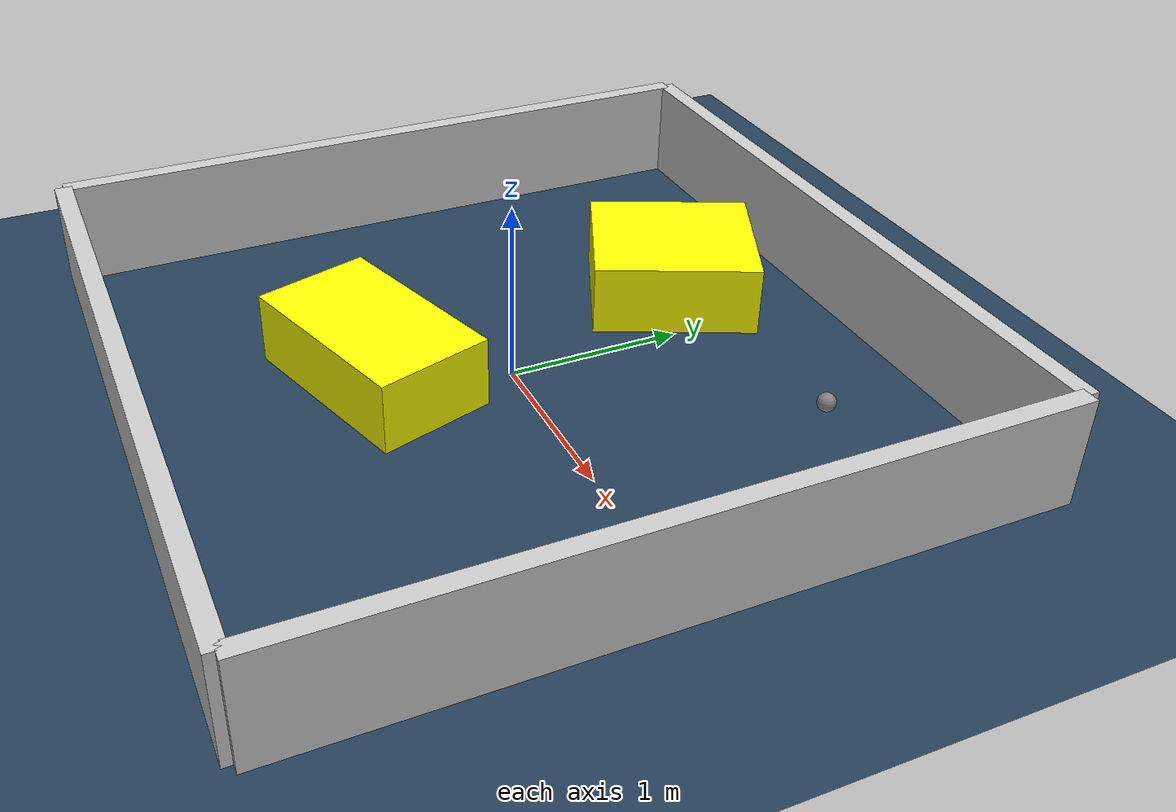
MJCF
<?xml version="1.0" ?>
<mujoco model="generated_environment">
  <option timestep="0.01" integrator="RK4" cone="elliptic"/>
  <default>
    <geom density="1"/>
  </default>
  <asset>
    <texture builtin="gradient" height="3072" rgb1="0.3 0.5 0.7" rgb2="0 0 0" type="skybox" width="512"/>
    <texture builtin="checker" height="300" mark="edge" markrgb="0.8 0.8 0.8" name="groundplane" rgb1="0.2 0.3 0.4" rgb2="0.1 0.2 0.3" type="2d" width="300"/>
    <material name="groundplane" reflectance="0.2" texrepeat="5 5" texture="groundplane" texuniform="true"/>
    <material name="robot" rgba="0.0 1.0 0.0 1"/>
  </asset>
  <worldbody>
    <light dir="0 0 -1" directional="true" pos="0 0 1.5"/>
    <geom condim="4" friction="1.0 0.005 0.001" material="groundplane" name="floor" size="0 0 0.05" type="plane"/>
    <body name="walls">
      <geom name="wall_1" condim="4" pos="-2.0 0.0 0.3" rgba="0.800000011920929 0.800000011920929 0.800000011920929 1.0" size="0.05 2.0 0.3" type="box"/>
      <geom name="wall_2" condim="4" pos="2.0 0.0 0.3" rgba="0.800000011920929 0.800000011920929 0.800000011920929 1.0" size="0.05 2.0 0.3" type="box"/>
      <geom name="wall_3" condim="4" pos="0.0 -2.0 0.3" rgba="0.800000011920929 0.800000011920929 0.800000011920929 1.0" size="2.0 0.05 0.3" type="box"/>
      <geom name="wall_4" condim="4" pos="0.0 2.0 0.3" rgba="0.800000011920929 0.800000011920929 0.800000011920929 1.0" size="2.0 0.05 0.3" type="box"/>
    </body>
    <body name="robot">
      <joint name="joint_x" type="slide" pos="0 0 0" axis="1 0 0"/>
      <joint name="joint_y" type="slide" pos="0 0 0" axis="0 1 0"/>
      <geom name="robot" type="sphere" pos="1.1234341452400263 1.2328769184234645 0.2" size="0.05" mass="5." friction="1.0 0.005 0.0001" condim="4"/>
      <site name="sensor_ball"/>
    </body>
    <body name="obstacle_1_movable">
      <geom name="obstacle_1_movable" condim="4" pos="-0.40337861932703833 1.19115767491057 0.2" euler="0 0 335.6779608597451" friction="1.0 0.005 0.001" rgba="1 1 0 1" size="0.4227807642408571 0.46717392608086183 0.2" type="box" mass="0.1"/>
      <joint type="free"/>
    </body>
    <body name="obstacle_2_movable">
      <geom name="obstacle_2_movable" condim="4" pos="-0.231034740621749 -0.7060553501270108 0.2" euler="0 0 287.24893944573813" friction="1.0 0.005 0.001" rgba="1 1 0 1" size="0.3334164438507724 0.5639733631366337 0.2" type="box" mass="0.1"/>
      <joint type="free"/>
    </body>
  </worldbody>
  <actuator>
    <motor name="actuator_x" joint="joint_x" gear="1" ctrlrange="-1 1"/>
    <motor name="actuator_y" joint="joint_y" gear="1" ctrlrange="-1 1"/>
  </actuator>
</mujoco>
